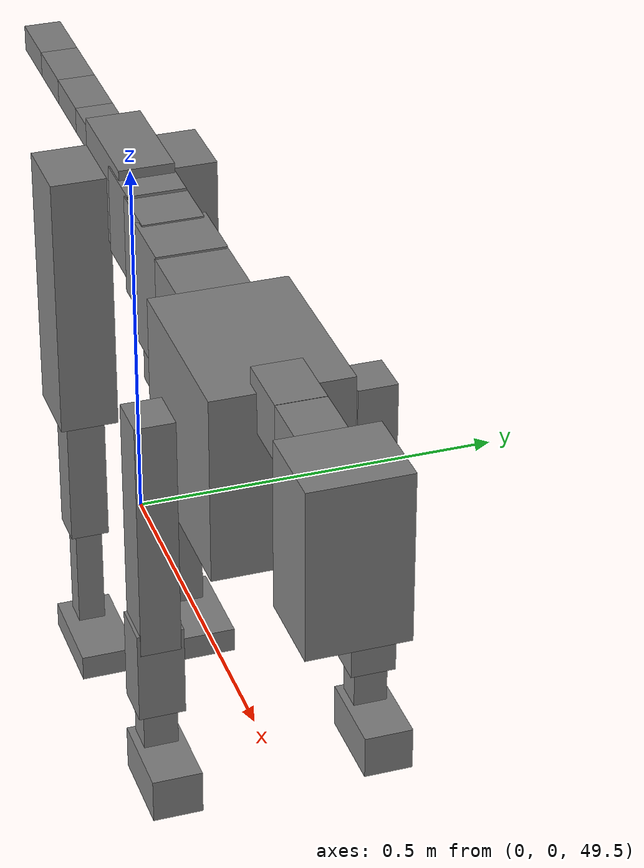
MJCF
<mujoco model="dog">

    <default>
        <joint armature="0.02" stiffness="1" damping="0.2" limited="true"/>
        <geom condim="3" friction="1 0.05 0.05" margin="0.01"/>
        <motor ctrllimited="true" ctrlrange="-1.0 1.0" forcelimited="true" gear="50"/>
    </default>

    <compiler inertiafromgeom="true" angle="radian"/>

    <option timestep="0.016" iterations="50" tolerance="1e-10" solver="Newton" jacobian="dense" cone="pyramidal"/>

    <size nconmax="20000" njmax="60000" nstack="5000000"/>
    <visual>
        <map force="0.1" zfar="30"/>
        <rgba haze="0.15 0.25 0.35 1"/>
        <quality shadowsize="2048"/>
        <global offwidth="800" offheight="800"/>
    </visual>

    <asset>
        <texture type="skybox" builtin="gradient" rgb1="0.3 0.5 0.7" rgb2="0 0 0" width="512" height="512"/>
        <texture name="texplane" type="2d" builtin="checker" rgb1=".2 .3 .4" rgb2=".1 0.15 0.2" width="512" height="512"
                 mark="cross" markrgb=".8 .8 .8"/>
        <texture name="texgeom" type="cube" builtin="flat" mark="cross" width="127" height="1278" rgb1="0.8 0.6 0.4"
                 rgb2="0.8 0.6 0.4" markrgb="1 1 1" random="0.01"/>

        <material name="matplane" reflectance="0.3" texture="texplane" texrepeat="1 1" texuniform="true"/>
        <material name="matgeom" texture="texgeom" texuniform="true" rgba="0.8 0.6 .4 1"/>
    </asset>

    <worldbody>
        <geom name="floor" pos="0 0 0" size="0 0 .25" type="plane" material="matplane" condim="3"/>

        <light directional="false" diffuse=".2 .2 .2" specular="0 0 0" pos="0 0 5" dir="0 0 -1" castshadow="false"/>
        <light mode="targetbodycom" target="torso" directional="false" diffuse=".8 .8 .8" specular="0.3 0.3 0.3"
               pos="0 0 4.0" dir="0 0 -1"/>

        <body name="root" pos="0 0 50">
            <freejoint name="root_1"/>
            <geom type="box" pos="0 0 -0.02" size="0.0774  0.0358  0.063" density="2030"/>

            <body name="spine1" pos="0.054 0 0">
                <joint name="spine1_y" axis="0 1 0" range="0 0.7" limited="true"/>
                <geom type="box" pos="0.02375 0 -0.03" size="0.04375  0.0375  0.05985" density="2030"/>

                <body name="spine2" pos="0.0612 0 0">
                    <joint name="spine2_y" axis="0 1 0" range="-0.15 0.15" limited="true"/>
                    <geom type="box" pos="0.03555  0  -0.04" size="0.04055  0.039  0.06615" density="2030"/>

                    <body name="spine3" pos="0.0730 0 0">
                        <joint name="spine3_y" axis="0 1 0" range="-0.15 0.15" limited="true"/>
                        <geom type="box" pos="0.03555  0  -0.057" size="0.04555  0.0445  0.081" density="2030"/>

                        <body name="spine4" pos="0.0780 0 0">
                            <joint name="spine4_y" axis="0 1 0" range="-0.15 0.15" limited="true"/>
                            <geom type="box" pos="0.05265  0  -0.07" size="0.05265  0.045  0.09135" density="2030"/>

                            <body name="torso" pos="0.1082 0 0">
                                <joint name="torso_y" axis="0 1 0" range="-0.15 0.15" limited="true"/>
                                <geom type="box" pos="0.11925  0  -0.085" size="0.11925  0.085  0.11745"
                                      density="2030"/>

                                <body name="neck1" pos="0.2160  0   0.0180">
                                    <joint name="neck1_y" axis="0 1 0" range="-1.2  -1" limited="true"/>
                                    <geom type="box" pos="0.0423  0  0" size="0.0423  0.03  0.036" density="2325"/>

                                    <body name="neck2" pos="0.0853  0  0">
                                        <joint name="neck2_y" axis="0 1 0" range="0.1  0" limited="true"/>
                                        <geom type="box" pos="0.0423  0  0" size="0.0423  0.03  0.036" density="2325"/>

                                        <body name="head" pos="0.0853  0  0">
                                            <joint name="head_y" axis="0 1 0" range="-0.3  -0.2" limited="true"/>
                                            <geom type="box" pos="0.0531  0  -0.055" size="0.0531  0.06  0.1044"
                                                  density="4030"/>

                                        </body>
                                    </body>
                                </body>

                                <body name="front_shoulder" pos="0.156  0   -0.0480">
                                    <joint name="front_shoulder_y" axis="0 1 0" range="-1 1.5" limited="true"/>
                                    <geom type="box" pos="0 0.13 -0.1265" size="0.0283  0.0242  0.1531" density="1158"/>
                                    <geom type="box" pos="0 -0.13 -0.1265" size="0.0283  0.0242  0.1531"
                                          density="1158"/>

                                    <body name="front_elbow" pos="0  0  -0.2530">
                                        <joint name="front_elbow_y" axis="0 1 0" range="-2 0" limited="true"/>
                                        <geom type="box" pos="0 0.13 -0.0585" size="0.0275  0.0281  0.0585"
                                              density="1081"/>
                                        <geom type="box" pos="0 -0.13 -0.0585" size="0.0275  0.0281  0.0585"
                                              density="1081"/>

                                        <body name="front_wrist" pos="0  0  -0.1169">
                                            <joint name="front_wrist_y" axis="0 1 0" range="-0.2 0" limited="true"/>
                                            <geom type="box" pos="0 0.13 -0.0320" size="0.0187  0.0208  0.0451"
                                                  density="1664"/>
                                            <geom type="box" pos="0 -0.13 -0.0320" size="0.0187  0.0208  0.0451"
                                                  density="1664"/>

                                            <body name="front_finger_end" pos="0  0  -0.0640">
                                                <joint name="front_finger_y" axis="0 1 0" range="-0.4 1"
                                                       limited="true"/>
                                                <geom type="box" pos="0.0301  0.13  -0.0127"
                                                      size="0.0551  0.0301  0.0277" density="1515"/>
                                                <geom type="box" pos="0.0301  -0.13  -0.0127"
                                                      size="0.0551  0.0301  0.0277" density="1515"/>

                                            </body>

                                        </body>
                                    </body>
                                </body>

                            </body>
                        </body>
                    </body>
                </body>
            </body>

            <body name="back_hip" pos="-0.03 0 -0.018">
                <joint name="back_hip_y" axis="0 1 0" range="-1.5 0.3" limited="true"/>
                <geom type="box" pos="0 0.07 -0.1563" size="0.0488  0.0382  0.1791" density="1154"/>
                <geom type="box" pos="0 -0.07 -0.1563" size="0.0488  0.0382  0.1791" density="1154"/>

                <body name="back_knee" pos="0  0  -0.3126">
                    <joint name="back_knee_y" axis="0 1 0" range="0 2.8" limited="true"/>
                    <geom type="box" pos="0 0.07 -0.0959" size="0.0259  0.0255  0.1114" density="1227"/>
                    <geom type="box" pos="0 -0.07 -0.0959" size="0.0259  0.0255  0.1114" density="1227"/>

                    <body name="back_ankle" pos="0  0  -0.1918">
                        <joint name="back_ankle_y" axis="0 1 0" range="-2.2 0" limited="true"/>
                        <geom type="box" pos="0 0.07 -0.0854" size="0.0179  0.0179  0.0967" density="1284"/>
                        <geom type="box" pos="0 -0.07 -0.0854" size="0.0179  0.0179  0.0967" density="1284"/>

                        <body name="back_toe_end" pos="0  0  -0.1709">
                            <joint name="back_toe_y" axis="0 1 0" range="-0.4 1" limited="true"/>
                            <geom type="box" pos="0.0365  0.07  -0.0023" size="0.0669  0.0365  0.0173" density="1515"/>
                            <geom type="box" pos="0.0365  -0.07  -0.0023" size="0.0669  0.0365  0.0173" density="1515"/>

                        </body>
                    </body>
                </body>
            </body>

            <body name="tail1" pos="-0.074 0 -0.006">
                <joint name="tail1_y" axis="0 1 0" range="-0.2 0.2" limited="true"/>
                <geom type="box" pos="-0.0536  0  0" size="0.045  0.025  0.0175" density="1587"/>

                <body name="tail2" pos="-0.09 0 0">
                    <joint name="tail2_y" axis="0 1 0" range="-0.2 0.2" limited="true"/>
                    <geom type="box" pos="-0.0536  0  0" size="0.045  0.025  0.0175" density="1587"/>

                    <body name="tail3" pos="-0.09 0 0">
                        <joint name="tail3_y" axis="0 1 0" range="-0.2 0.2" limited="true"/>
                        <geom type="box" pos="-0.0536  0  0" size="0.045  0.025  0.0175" density="1587"/>

                        <body name="tail4" pos="-0.09 0 0">
                            <joint name="tail4_y" axis="0 1 0" range="-0.2 0.2" limited="true"/>
                            <geom type="box" pos="-0.0536  0  0" size="0.045  0.025  0.0175" density="1587"/>

                        </body>
                    </body>
                </body>
            </body>
        </body>
    </worldbody>

    <actuator>
        <motor joint="spine1_y" forcerange="-150 150     "/>
        <motor joint="spine2_y" forcerange="-150 150     "/>
        <motor joint="spine3_y" forcerange="-150 150     "/>
        <motor joint="spine4_y" forcerange="-150 150     "/>
        <motor joint="torso_y" forcerange="-150 150     "/>
        <motor joint="neck1_y" forcerange="-100 100       "/>
        <motor joint="neck2_y" forcerange="-100 100       "/>
        <motor joint="head_y" forcerange="-150 150       "/>
        <motor joint="front_shoulder_y" forcerange="-101.89 159.15"/>
        <motor joint="front_elbow_y" forcerange="-190.28 114.19"/>
        <motor joint="front_wrist_y" forcerange="-99.55 67.07"/>
        <motor joint="front_finger_y" forcerange="-41.58 78.75"/>
        <motor joint="back_hip_y" forcerange="-333.84 376.04"/>
        <motor joint="back_knee_y" forcerange="-262.57 308.14"/>
        <motor joint="back_angle_y" forcerange="-85.87 99.77"/>
        <motor joint="back_toe_y" forcerange="-103.14 108.97"/>
        <motor joint="tail1_y" forcerange="-50 50     "/>
        <motor joint="tail2_y" forcerange="-50 50     "/>
        <motor joint="tail3_y" forcerange="-50 50     "/>
        <motor joint="tail4_y" forcerange="-50 50     "/>
    </actuator>
</mujoco>
